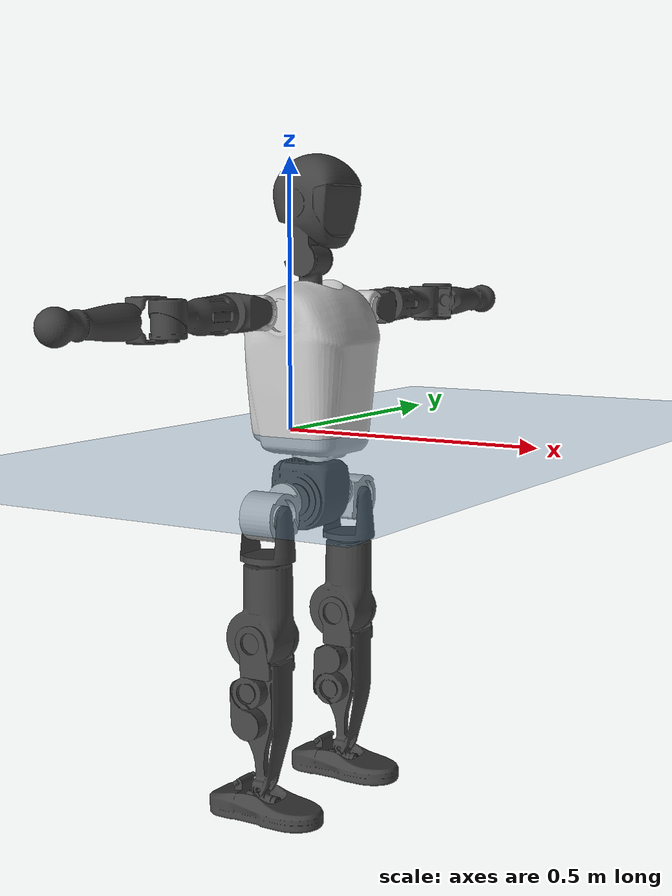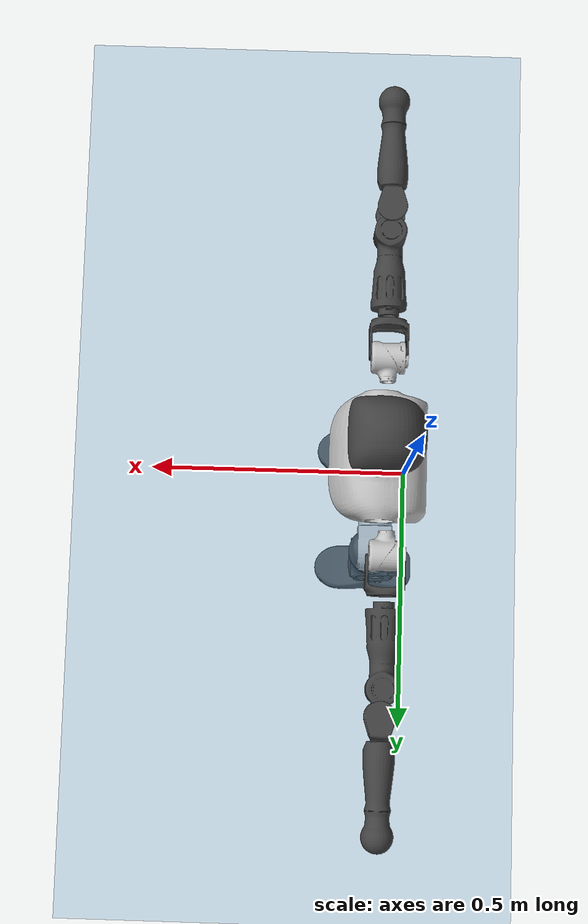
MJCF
<mujoco model="T1">
  <compiler angle="radian" assetdir="assets" balanceinertia="true" inertiafromgeom="false"/>

  <option timestep="0.005" density="1.2" viscosity="2e-05"/>

  <size nkey="1"/>

  <visual>
    <quality shadowsize="8192"/>
    <map shadowclip="0.5"/>
  </visual>

  <default>
    <default class="/">
      <joint armature="0.01" damping="0.01" frictionloss="0.1"/>
      <geom contype="0" conaffinity="0" group="1" solref="-1000 -80"/>
      <site size="0.01 0.005 0.005" group="5"/>
      <general forcelimited="true" biastype="affine" gainprm="25" biasprm="0 -25 -0.6"/>
      <default class="t1">
        <geom rgba="0.25 0.25 0.25 1"/>
        <default class="visual">
          <geom type="mesh" group="2"/>
        </default>
        <default class="collision">
          <geom group="3"/>
        </default>
        <default class="foot">
          <geom size="0.1115 0.05 0.015" type="box" condim="6" group="4" priority="1" solimp="0.015 1 0.015"/>
        </default>
        <default class="reward_collision_sphere">
          <geom group="5" rgba="1 0 0 1"/>
        </default>
      </default>
    </default>
  </default>

  <asset>
    <texture type="skybox" colorspace="auto" name="//unnamed_texture_0" builtin="gradient" rgb1="0.95 0.95 0.95" rgb2="0.95 0.95 0.95" width="100" height="600"/>
    <texture type="2d" colorspace="auto" name="texplane" builtin="checker" rgb1="0.345 0.575 0.748" rgb2="0.345 0.575 0.748" markrgb="1 1 1" width="512" height="512"/>
    <material name="MatPlane" class="/" texture="texplane" texuniform="true" texrepeat="2 2" specular="0.9"/>
    <mesh name="Trunk" class="/" file="Trunk.stl"/>
    <mesh name="H1" class="/" file="H1.stl"/>
    <mesh name="H2" class="/" file="H2.stl"/>
    <mesh name="AL1" class="/" file="AL1.stl"/>
    <mesh name="AL2" class="/" file="AL2.stl"/>
    <mesh name="AL3" class="/" file="AL3.stl"/>
    <mesh name="left_hand_link" class="/" file="left_hand_link.stl"/>
    <mesh name="AR1" class="/" file="AR1.stl"/>
    <mesh name="AR2" class="/" file="AR2.stl"/>
    <mesh name="AR3" class="/" file="AR3.stl"/>
    <mesh name="right_hand_link" class="/" file="right_hand_link.stl"/>
    <mesh name="Waist" class="/" file="Waist.stl"/>
    <mesh name="Hip_Pitch_Left" class="/" file="Hip_Pitch_Left.stl"/>
    <mesh name="Hip_Roll_Left" class="/" file="Hip_Roll_Left.stl"/>
    <mesh name="Hip_Yaw_Left" class="/" file="Hip_Yaw_Left.stl"/>
    <mesh name="Shank_Left" class="/" file="Shank_Left.stl"/>
    <mesh name="Ankle_Cross_Left" class="/" file="Ankle_Cross_Left.stl"/>
    <mesh name="left_foot_link" class="/" file="left_foot_link.stl"/>
    <mesh name="Hip_Pitch_Right" class="/" file="Hip_Pitch_Right.stl"/>
    <mesh name="Hip_Roll_Right" class="/" file="Hip_Roll_Right.stl"/>
    <mesh name="Hip_Yaw_Right" class="/" file="Hip_Yaw_Right.stl"/>
    <mesh name="Shank_Right" class="/" file="Shank_Right.stl"/>
    <mesh name="Ankle_Cross_Right" class="/" file="Ankle_Cross_Right.stl"/>
    <mesh name="right_foot_link" class="/" file="right_foot_link.stl"/>
  </asset>

  <worldbody>
    <geom name="floor" class="/" size="100 100 0.125" type="plane" group="0" material="MatPlane"/>
    <light name="toplight_shadow" class="/" pos="0 0 5" dir="0.0990148 0.0990148 -0.990148" type="directional" ambient="0.04 0.04 0.04" diffuse="0.55 0.55 0.55" specular="0.12 0.12 0.12"/>
    <light name="toplight_fill" class="/" pos="0 0 5" dir="0.0990148 0.0990148 -0.990148" type="directional" castshadow="false" ambient="0.04 0.04 0.04" diffuse="0.3 0.3 0.3" specular="0.08 0.08 0.08"/>
    <body name="trunk" childclass="t1" pos="-0.000254557 -0.00201813 -0.00173504" quat="1 -0.000183225 -2.84512e-06 0.000106223">
      <inertial pos="0.0464308 0.000608135 0.110963" quat="0.999937 0.0105611 -0.000521084 0.00388102" mass="13.2153" diaginertia="0.0297626 0.299708 0.0644613"/>
      <joint name="//unnamed_joint_0" type="free" armature="0" damping="0" frictionloss="0"/>
      <geom name="//unnamed_geom_1" class="visual" rgba="0.76 0.76 0.76 1" mesh="Trunk"/>
      <geom name="//unnamed_geom_2" class="collision" size="0.0791931 0.105591 0.158386" pos="0.0482591 0 0.124739" type="box"/>
      <geom name="//unnamed_geom_3" class="reward_collision_sphere" size="0.121429" pos="0.0482591 0 0.103949"/>
      <geom name="//unnamed_geom_4" class="reward_collision_sphere" size="0.0158386" pos="0.0482591 0.112533 0"/>
      <geom name="//unnamed_geom_5" class="reward_collision_sphere" size="0.0158386" pos="0.0482591 -0.112533 0"/>
      <geom name="//unnamed_geom_6" class="reward_collision_sphere" size="0.0158386" pos="0.0482591 0.141659 0.187108"/>
      <geom name="//unnamed_geom_7" class="reward_collision_sphere" size="0.0158386" pos="0.0482591 -0.141659 0.187108"/>
      <site name="imu" pos="-0.0140512 -0.0130186 0.00493325" size="0.0105591"/>
      <camera name="track" pos="0 -2.64784 0" quat="0.707107 0.707107 0 0" mode="trackcom"/>
      <camera name="ego_camera" pos="0.0981269 0 0.436585" quat="-0.5 -0.5 0.5 0.5"/>
      <body name="H1" pos="0.0473411 -0.00220206 0.254285" quat="1 -0.000186473 -5.31245e-05 0.000158364">
        <inertial pos="-0.000934334 -0.00135092 0.0597101" quat="0.757662 -0.0135807 0.00389448 0.652494" mass="0.511833" diaginertia="8.08672e-05 0.00089097 0.000180571"/>
        <joint name="AAHead_yaw" pos="0 0 0" axis="0.0096753 -0.00446084 0.999943" range="-1.56786 1.5379" armature="0.0111908" damping="0.0247477" frictionloss="0.104348"/>
        <geom name="//unnamed_geom_8" class="visual" mesh="H1"/>
        <body name="H2" pos="-0.000169263 -0.00213092 0.0617526" quat="1 0.000330865 0.000134178 0.000185198">
          <inertial pos="0.00366005 3.86571e-05 0.100824" quat="0.989481 0.102131 -0.0719612 -0.0729242" mass="0.735593" diaginertia="0.000685468 0.00772201 0.00213853"/>
          <joint name="Head_pitch" pos="0 0 0" axis="-0.000979925 -0.999998 -0.00184998" range="-1.20283 0.344137" armature="0.0102765" damping="0.00958462" frictionloss="0.0906425"/>
          <geom name="//unnamed_geom_9" class="visual" mesh="H2"/>
          <geom name="//unnamed_geom_10" class="collision" size="0.0844727" pos="0.00804319 0 0.114344"/>
          <geom name="//unnamed_geom_11" class="reward_collision_sphere" size="0.0950318" pos="0.0160864 0 0.103949"/>
        </body>
      </body>
      <body name="AL1" pos="0.0443186 0.140136 0.225236" quat="1 -0.000884002 0.00035563 0.000130559">
        <inertial pos="-0.000535172 0.0567977 -0.00260417" quat="0.509633 0.491526 -0.502649 0.496003" mass="0.63425" diaginertia="0.000474234 0.00539769 0.000352902"/>
        <joint name="Left_Shoulder_Pitch" pos="0 0 0" axis="0.00174798 0.999998 -0.000585232" stiffness="0.00101118" range="-3.29463 1.26442" armature="0.0103504" damping="0" frictionloss="0.107164"/>
        <geom name="//unnamed_geom_12" class="visual" rgba="0.76 0.76 0.76 1" mesh="AL1"/>
        <body name="AL2" pos="0.000721346 0.0647245 -0.00283426" quat="0.999999 -0.000735998 0.000535036 -0.000967803">
          <inertial pos="0.00469048 0.0510234 0.00265843" quat="0.48836 0.513398 -0.486587 0.511039" mass="0.191814" diaginertia="0.000132483 0.00138524 0.000215984"/>
          <joint name="Left_Shoulder_Roll" pos="0 0 0" axis="-0.999988 8.55872e-05 -0.00486302" range="-1.57833 1.74066" armature="0.0110778" damping="0.00528526" frictionloss="0.103782"/>
          <geom name="//unnamed_geom_13" class="visual" mesh="AL2"/>
          <body name="AL3" pos="0.00067885 0.0806437 0.00325951" quat="1 -0.000157013 0.000163972 -0.000261191">
            <inertial pos="-0.00141445 0.111965 -0.00300584" quat="0.714112 0.699977 0.00534087 -0.00696993" mass="1.27619" diaginertia="0.00439099 0.0536063 0.000787583"/>
            <joint name="Left_Elbow_Pitch" pos="0 0 0" axis="-0.00382983 -0.999924 -0.0117512" stiffness="0.00633945" range="-2.27827 2.29873" armature="0.0107149" damping="0.0238461" frictionloss="0.107332"/>
            <geom name="//unnamed_geom_14" class="visual" mesh="AL3"/>
            <geom name="//unnamed_geom_15" class="collision" size="0.0316773 0.0791931" pos="0 0.0661959 0" quat="0.707105 0.707108 0 0" type="cylinder"/>
            <geom name="//unnamed_geom_16" class="reward_collision_sphere" size="0.0380127"/>
            <body name="left_hand_link" pos="0.00273546 0.196503 -0.000843036" quat="1 -0.000115503 8.43838e-05 -5.92137e-06">
              <inertial pos="-0.0009823 0.145886 -0.000525861" quat="0.706301 0.707883 -0.00243451 -0.00590058" mass="0.384849" diaginertia="0.00267153 0.0333869 0.000263263"/>
              <joint name="Left_Elbow_Yaw" pos="0 0 0" axis="-0.00440331 -0.000835022 0.99999" stiffness="0.00242255" range="-2.47354 0.0190345" armature="0.0103944" damping="0.0086528" frictionloss="0.11857"/>
              <geom name="//unnamed_geom_17" class="visual" mesh="left_hand_link"/>
              <geom name="//unnamed_geom_18" class="collision" size="0.0316773 0.092392" pos="0 0.172109 0" quat="0.707105 0.707108 0 0" type="cylinder"/>
              <geom name="//unnamed_geom_19" class="reward_collision_sphere" size="0.0527954"/>
              <geom name="//unnamed_geom_20" class="reward_collision_sphere" size="0.0369568" pos="0 0.145631 0"/>
              <geom name="//unnamed_geom_21" class="reward_collision_sphere" size="0.0369568" pos="0 0.284643 0"/>
            </body>
          </body>
        </body>
      </body>
      <body name="AR1" pos="0.048201 -0.14013 0.22681" quat="0.999999 0.00113778 0.000659752 -0.000540187">
        <inertial pos="-0.0036153 -0.0592218 -0.001519" quat="0.508032 0.498727 -0.499166 0.493972" mass="0.658532" diaginertia="0.000474017 0.00558412 0.000377793"/>
        <joint name="Right_Shoulder_Pitch" pos="0 0 0" axis="0.00781251 -0.999969 0.000810127" stiffness="0.00040972" range="-1.2323 3.31053" armature="0.0102325" damping="0" frictionloss="0.099835"/>
        <geom name="//unnamed_geom_22" class="visual" rgba="0.76 0.76 0.76 1" mesh="AR1"/>
        <body name="AR2" pos="-0.000436889 -0.0614685 0.00237824" quat="1 3.80908e-05 -8.51631e-06 7.29802e-05">
          <inertial pos="0.000161844 -0.0507328 0.00037282" quat="0.511537 0.484501 -0.517468 0.485609" mass="0.190426" diaginertia="0.000143094 0.00142829 0.000227249"/>
          <joint name="Right_Shoulder_Roll" pos="0 0 0" axis="-0.999998 -0.00169516 -0.000640575" range="-1.74172 1.57323" armature="0.0105891" damping="0.00506916" frictionloss="0.110938"/>
          <geom name="//unnamed_geom_23" class="visual" mesh="AR2"/>
          <body name="AR3" pos="0.00200608 -0.0777668 -0.00248901" quat="0.999999 0.000501773 -0.00130229 -0.000641455">
            <inertial pos="0.00123818 -0.112093 -0.000611566" quat="0.705416 0.70866 -0.0126822 -0.00537524" mass="1.23898" diaginertia="0.00449694 0.0533264 0.000762455"/>
            <joint name="Right_Elbow_Pitch" pos="0 0 0" axis="-0.00597485 0.999955 0.00741622" stiffness="0.000279801" range="-2.25908 2.29785" armature="0.0104707" damping="0.011223" frictionloss="0.106403"/>
            <geom name="//unnamed_geom_24" class="visual" mesh="AR3"/>
            <geom name="//unnamed_geom_25" class="collision" size="0.0316773 0.0791931" pos="0 -0.0661959 0" quat="0.707105 0.707108 0 0" type="cylinder"/>
            <geom name="//unnamed_geom_26" class="reward_collision_sphere" size="0.0380127"/>
            <body name="right_hand_link" pos="-0.00152655 -0.19265 0.000555642" quat="0.999999 0.000835512 0.000768302 -0.000897827">
              <inertial pos="-0.000342667 -0.142296 0.00274317" quat="0.707839 0.706373 0.000884322 0.000525241" mass="0.392347" diaginertia="0.00285491 0.0344345 0.000261256"/>
              <joint name="Right_Elbow_Yaw" pos="0 0 0" axis="0.00170928 0.00404569 0.99999" range="0.0526728 2.44308" armature="0.0111306" damping="0.0042316" frictionloss="0.112599"/>
              <geom name="//unnamed_geom_27" class="visual" mesh="right_hand_link"/>
              <geom name="//unnamed_geom_28" class="collision" size="0.0316773 0.092392" pos="0 -0.172109 0" quat="0.707105 0.707108 0 0" type="cylinder"/>
              <geom name="//unnamed_geom_29" class="reward_collision_sphere" size="0.0527954"/>
              <geom name="//unnamed_geom_30" class="reward_collision_sphere" size="0.0369568" pos="0 -0.145631 0"/>
              <geom name="//unnamed_geom_31" class="reward_collision_sphere" size="0.0369568" pos="0 -0.284643 0"/>
            </body>
          </body>
        </body>
      </body>
      <body name="Waist" pos="0.0463488 -0.00158911 -0.119916" quat="0.999999 -0.000736476 -0.000737675 -0.000140366">
        <inertial pos="0.00167116 0.000115624 0.00772992" quat="0.984164 0.00323858 -0.177225 0.00172268" mass="2.83639" diaginertia="0.00172883 0.021041 0.00568753"/>
        <joint name="Waist" pos="0 0 0" axis="0.00992075 0.00175922 0.999949" range="-1.62577 1.57834" armature="0.011887" damping="0.0231564" frictionloss="0.104169"/>
        <geom name="//unnamed_geom_32" class="visual" mesh="Waist"/>
        <body name="Hip_Pitch_Left" pos="0.000164057 0.14225 -0.000557087" quat="1 0.000172866 -0.000216867 0.000207765">
          <inertial pos="0.00133272 -0.00738997 -0.0161916" quat="0.974189 0.225522 0.00347854 0.00908019" mass="1.22574" diaginertia="0.00061126 0.00616483 0.00153643"/>
          <joint name="Left_Hip_Pitch" pos="0 0 0" axis="-0.00478327 0.999984 0.00293402" stiffness="0.00882979" range="-1.79473 1.59993" armature="0.0111771" damping="0.0238968" frictionloss="0.115841"/>
          <geom name="//unnamed_geom_33" class="visual" rgba="0.76 0.76 0.76 1" mesh="Hip_Pitch_Left"/>
          <body name="Hip_Roll_Left" pos="0.00102675 -0.00320821 -0.0227573" quat="1 -0.000509709 0.000281487 0.000326096">
            <inertial pos="-0.00185722 -0.000107182 -0.0531364" quat="0.707855 -0.00704265 -0.0107349 0.706242" mass="0.457767" diaginertia="0.000583303 0.00653683 0.000643397"/>
            <joint name="Left_Hip_Roll" pos="0 0 0" axis="-0.999957 0.000416449 -0.00926268" stiffness="0.00754112" range="-1.56707 0.20917" armature="0.0113281" damping="0.00229046" frictionloss="0.0907364"/>
            <geom name="//unnamed_geom_34" class="visual" mesh="Hip_Roll_Left"/>
            <geom name="//unnamed_geom_35" class="reward_collision_sphere" size="0.058075"/>
            <body name="Hip_Yaw_Left" pos="-0.00300968 0.000349143 -0.0851598" quat="1 0.000124517 3.27545e-05 -5.00139e-06">
              <inertial pos="-0.00776833 0.00137844 -0.0930316" quat="0.697514 -0.0312674 -0.0292 0.715293" mass="2.52227" diaginertia="0.00882174 0.101826 0.0032043"/>
              <joint name="Left_Hip_Yaw" pos="0 0 0" axis="-0.002643 0.00257763 -0.999993" range="-1.06478 1.04063" armature="0.0105636" damping="0" frictionloss="0.102763"/>
              <geom name="//unnamed_geom_36" class="visual" mesh="Hip_Yaw_Left"/>
              <geom name="//unnamed_geom_37" class="collision" size="0.0527954 0.0844727" type="cylinder"/>
              <body name="Shank_Left" pos="-0.0105834 -0.000720832 -0.137464" quat="1 4.54746e-05 -0.000339176 2.64777e-05">
                <inertial pos="-0.00519991 0.00252599 -0.127435" quat="0.997551 0.00121618 -0.0242128 0.0656103" mass="2.04878" diaginertia="0.011856 0.143069 0.00230255"/>
                <joint name="Left_Knee_Pitch" pos="0 0 0" axis="0.000750217 0.999993 -0.00374752" stiffness="0.00790159" range="0.051097 2.28833" armature="0.010409" damping="0.01624" frictionloss="0.102387"/>
                <geom name="//unnamed_geom_38" class="visual" mesh="Shank_Left"/>
                <geom name="//unnamed_geom_39" class="collision" size="0.0527954 0.0791931" pos="0 0 -0.124739" type="cylinder"/>
                <geom name="//unnamed_geom_40" class="reward_collision_sphere" size="0.0686341"/>
                <body name="Ankle_Cross_Left" pos="0.00104822 -0.000863884 -0.289248" quat="1 0.000213684 -0.000183212 -0.00012774">
                  <inertial pos="-0.00527433 0.00276137 -0.00553561" quat="0.449181 0.541506 0.557036 0.441269" mass="0.0895214" diaginertia="1.01343e-05 0.00010173 1.38656e-05"/>
                  <joint name="Left_Ankle_Pitch" pos="0 0 0" axis="0.000934724 0.999999 -0.00139496" range="-0.839627 0.350268" armature="0.00926338" damping="0.00070666" frictionloss="0.113221"/>
                  <geom name="//unnamed_geom_41" class="visual" mesh="Ankle_Cross_Left"/>
                  <body name="left_foot_link" pos="-0.00274983 -0.00262396 -0.011599" quat="0.999999 -0.000975306 0.000503463 0.000528441">
                    <inertial pos="-0.0028353 6.14574e-05 -0.0117493" quat="-0.00212711 0.616207 -0.00425268 0.78757" mass="0.77598" diaginertia="0.00086614 0.00978958 0.00259924"/>
                    <joint name="Left_Ankle_Roll" pos="0 0 0" axis="-0.999999 5.41042e-06 0.00165361" range="-0.45672 0.441268" armature="0.010494" damping="0.00203368" frictionloss="0.106348"/>
                    <geom name="//unnamed_geom_42" class="visual" mesh="left_foot_link"/>
                    <geom name="left_foot" class="foot" size="0.11338 0.0473392 0.0148433" pos="0.00804319 0 -0.0155923"/>
                    <geom name="//unnamed_geom_44" class="reward_collision_sphere" size="0.0549072" pos="0.00804319 0 -0.0155923"/>
                    <geom name="//unnamed_geom_45" class="reward_collision_sphere" size="0.0316773" pos="0.0764103 -0.0304501 -0.0155923"/>
                    <geom name="//unnamed_geom_46" class="reward_collision_sphere" size="0.0316773" pos="-0.0563023 -0.0304501 -0.0155923"/>
                    <site name="left_foot" class="foot" pos="0.00804319 0 -0.0155923" size="0.0105591"/>
                  </body>
                </body>
              </body>
            </body>
          </body>
        </body>
        <body name="Hip_Pitch_Right" pos="0.000351791 -0.139034 0.00216037" quat="1 -0.000563 -0.000308461 -0.000329208">
          <inertial pos="-0.00210372 0.00837043 -0.0166394" quat="0.973994 -0.226148 0.0137434 0.00189108" mass="1.24501" diaginertia="0.000629868 0.00607064 0.00156279"/>
          <joint name="Right_Hip_Pitch" pos="0 0 0" axis="3.27636e-05 -1 0.000381139" stiffness="0.00105256" range="-1.5671 1.78466" armature="0.00908404" damping="0.010949" frictionloss="0.107898"/>
          <geom name="//unnamed_geom_47" class="visual" rgba="0.76 0.76 0.76 1" mesh="Hip_Pitch_Right"/>
          <body name="Hip_Roll_Right" pos="0.000676288 -0.000838035 -0.0228792" quat="0.999999 -3.00083e-05 0.000509383 0.00143874">
            <inertial pos="0.0014707 0.00184513 -0.0529209" quat="0.705375 -0.0100852 -0.00461569 0.708748" mass="0.436146" diaginertia="0.000586191 0.00624906 0.000613047"/>
            <joint name="Right_Hip_Roll" pos="0 0 0" axis="-0.999998 0.000813575 -0.00189399" range="-0.193518 1.55147" armature="0.0105513" damping="0.0140565" frictionloss="0.120056"/>
            <geom name="//unnamed_geom_48" class="visual" mesh="Hip_Roll_Right"/>
            <geom name="//unnamed_geom_49" class="reward_collision_sphere" size="0.058075"/>
            <body name="Hip_Yaw_Right" pos="-0.00176209 -0.00124497 -0.0850077" quat="1 0.000214116 -0.000292794 0.000286049">
              <inertial pos="-0.00554221 -0.00293245 -0.0941211" quat="0.708482 -0.0307261 -0.0358619 0.704147" mass="2.60232" diaginertia="0.0086938 0.108174 0.00307995"/>
              <joint name="Right_Hip_Yaw" pos="0 0 0" axis="0.000598261 -0.00167447 -0.999998" range="-1.01162 1.02022" armature="0.0116655" damping="0.00987949" frictionloss="0.106518"/>
              <geom name="//unnamed_geom_50" class="visual" mesh="Hip_Yaw_Right"/>
              <geom name="//unnamed_geom_51" class="collision" size="0.0527954 0.0844727" type="cylinder"/>
              <body name="Shank_Right" pos="-0.0129075 0.000554242 -0.138016" quat="0.999999 0.000193659 0.000819347 0.00110709">
                <inertial pos="-0.00539934 0.000154211 -0.130019" quat="0.9991 -0.00137178 -0.0275489 -0.0322168" mass="2.12228" diaginertia="0.0117358 0.137951 0.00242517"/>
                <joint name="Right_Knee_Pitch" pos="0 0 0" axis="0.00557153 -0.999948 -0.00851776" stiffness="0.00934002" range="-2.30938 0.0328143" armature="0.0110753" damping="0.0193899" frictionloss="0.107116"/>
                <geom name="//unnamed_geom_52" class="visual" mesh="Shank_Right"/>
                <geom name="//unnamed_geom_53" class="collision" size="0.0527954 0.0791931" pos="0 0 -0.124739" type="cylinder"/>
                <geom name="//unnamed_geom_54" class="reward_collision_sphere" size="0.0686341"/>
                <body name="Ankle_Cross_Right" pos="-0.002043 0.000680202 -0.28986" quat="1 -0.000129492 0.000118781 4.40369e-05">
                  <inertial pos="-0.00321448 -0.00256655 -0.00838713" quat="0.436898 0.556658 0.55411 0.438421" mass="0.0905634" diaginertia="1.00288e-05 0.000107695 1.46048e-05"/>
                  <joint name="Right_Ankle_Pitch" pos="0 0 0" axis="0.0114744 -0.99992 -0.00523012" range="-0.392426 0.82978" armature="0.0106615" damping="0.0071351" frictionloss="0.102904"/>
                  <geom name="//unnamed_geom_55" class="visual" mesh="Ankle_Cross_Right"/>
                  <body name="right_foot_link" pos="0.00151006 -0.000984284 -0.0147353" quat="1 -0.000167785 -5.31685e-05 -8.6807e-06">
                    <inertial pos="-0.000963737 -0.000766243 -0.00934546" quat="-0.00142848 0.620454 0.00212312 0.784238" mass="0.800796" diaginertia="0.00089431 0.00930252 0.0025959"/>
                    <joint name="Right_Ankle_Roll" pos="0 0 0" axis="-0.999926 -0.0052467 -0.010979" range="-0.46293 0.440907" armature="0.0100363" damping="0.00304396" frictionloss="0.10308"/>
                    <geom name="//unnamed_geom_56" class="visual" mesh="right_foot_link"/>
                    <geom name="right_foot" class="foot" size="0.10799 0.0452084 0.0145469" pos="0.00804319 0 -0.0155923"/>
                    <geom name="//unnamed_geom_58" class="reward_collision_sphere" size="0.0422363"/>
                    <geom name="//unnamed_geom_59" class="reward_collision_sphere" size="0.0316773" pos="0.00804319 0 -0.0155923"/>
                    <geom name="//unnamed_geom_60" class="reward_collision_sphere" size="0.0316773" pos="0.0764103 0.0304501 -0.0155923"/>
                    <geom name="//unnamed_geom_61" class="reward_collision_sphere" size="0.0316773" pos="-0.0563023 0.0304501 -0.0155923"/>
                    <site name="right_foot" class="foot" pos="0.00804319 0 -0.0155923" size="0.0105591"/>
                  </body>
                </body>
              </body>
            </body>
          </body>
        </body>
      </body>
    </body>
  </worldbody>

  <contact>
    <pair class="/" geom1="floor" geom2="left_foot" name="//unnamed_contact_0"/>
    <pair class="/" geom1="floor" geom2="right_foot" name="//unnamed_contact_1"/>
  </contact>

  <actuator>
    <general name="AAHead_yaw" class="/" joint="AAHead_yaw" forcerange="-7.75191 7.75191" gainprm="24.489" biasprm="0 -24.489 -0.617729"/>
    <general name="Head_pitch" class="/" joint="Head_pitch" forcerange="-7.35137 7.35137" gainprm="24.489" biasprm="0 -24.489 -0.617729"/>
    <general name="Left_Shoulder_Pitch" class="/" joint="Left_Shoulder_Pitch" forcerange="-16.823 16.823" gainprm="24.489" biasprm="0 -24.489 -0.617729"/>
    <general name="Left_Shoulder_Roll" class="/" joint="Left_Shoulder_Roll" forcerange="-17.7194 17.7194" gainprm="24.489" biasprm="0 -24.489 -0.617729"/>
    <general name="Left_Elbow_Pitch" class="/" joint="Left_Elbow_Pitch" forcerange="-19.0715 19.0715" gainprm="24.489" biasprm="0 -24.489 -0.617729"/>
    <general name="Left_Elbow_Yaw" class="/" joint="Left_Elbow_Yaw" forcerange="-17.9974 17.9974" gainprm="24.489" biasprm="0 -24.489 -0.617729"/>
    <general name="Right_Shoulder_Pitch" class="/" joint="Right_Shoulder_Pitch" forcerange="-20.5103 20.5103" gainprm="24.489" biasprm="0 -24.489 -0.617729"/>
    <general name="Right_Shoulder_Roll" class="/" joint="Right_Shoulder_Roll" forcerange="-17.0202 17.0202" gainprm="24.489" biasprm="0 -24.489 -0.617729"/>
    <general name="Right_Elbow_Pitch" class="/" joint="Right_Elbow_Pitch" forcerange="-20.0323 20.0323" gainprm="24.489" biasprm="0 -24.489 -0.617729"/>
    <general name="Right_Elbow_Yaw" class="/" joint="Right_Elbow_Yaw" forcerange="-20.195 20.195" gainprm="24.489" biasprm="0 -24.489 -0.617729"/>
    <general name="Waist" class="/" joint="Waist" forcerange="-34.542 34.542" gainprm="24.489" biasprm="0 -24.489 -0.617729"/>
    <general name="Left_Hip_Pitch" class="/" joint="Left_Hip_Pitch" forcerange="-46.4389 46.4389" gainprm="24.489" biasprm="0 -24.489 -0.617729"/>
    <general name="Left_Hip_Roll" class="/" joint="Left_Hip_Roll" forcerange="-34.7117 34.7117" gainprm="24.489" biasprm="0 -24.489 -0.617729"/>
    <general name="Left_Hip_Yaw" class="/" joint="Left_Hip_Yaw" forcerange="-28.9329 28.9329" gainprm="24.489" biasprm="0 -24.489 -0.617729"/>
    <general name="Left_Knee_Pitch" class="/" joint="Left_Knee_Pitch" forcerange="-61.5755 61.5755" gainprm="24.489" biasprm="0 -24.489 -0.617729"/>
    <general name="Left_Ankle_Pitch" class="/" joint="Left_Ankle_Pitch" forcerange="-20.9032 20.9032" gainprm="24.489" biasprm="0 -24.489 -0.617729"/>
    <general name="Left_Ankle_Roll" class="/" joint="Left_Ankle_Roll" forcerange="-17.0188 17.0188" gainprm="24.489" biasprm="0 -24.489 -0.617729"/>
    <general name="Right_Hip_Pitch" class="/" joint="Right_Hip_Pitch" forcerange="-47.6073 47.6073" gainprm="24.489" biasprm="0 -24.489 -0.617729"/>
    <general name="Right_Hip_Roll" class="/" joint="Right_Hip_Roll" forcerange="-31.6731 31.6731" gainprm="24.489" biasprm="0 -24.489 -0.617729"/>
    <general name="Right_Hip_Yaw" class="/" joint="Right_Hip_Yaw" forcerange="-33.0772 33.0772" gainprm="24.489" biasprm="0 -24.489 -0.617729"/>
    <general name="Right_Knee_Pitch" class="/" joint="Right_Knee_Pitch" forcerange="-63.2044 63.2044" gainprm="24.489" biasprm="0 -24.489 -0.617729"/>
    <general name="Right_Ankle_Pitch" class="/" joint="Right_Ankle_Pitch" forcerange="-20.9982 20.9982" gainprm="24.489" biasprm="0 -24.489 -0.617729"/>
    <general name="Right_Ankle_Roll" class="/" joint="Right_Ankle_Roll" forcerange="-14.1682 14.1682" gainprm="24.489" biasprm="0 -24.489 -0.617729"/>
  </actuator>

  <sensor>
    <gyro site="imu" name="imu_angular_velocity"/>
    <velocimeter site="imu" name="imu_linear_velocity"/>
    <framelinvel objtype="site" objname="left_foot" name="left_foot_global_linear_velocity"/>
    <framelinvel objtype="site" objname="right_foot" name="right_foot_global_linear_velocity"/>
  </sensor>

  <keyframe>
    <key name="home" qpos="0 0 0.6385 1 0 0 0 0 0 0 1.4 0 -0.4 0 -1.4 0 0.4 0 -0.4 0 0 0.8 -0.4 0 0.4 0 0 -0.8 0.4 0"/>
  </keyframe>
</mujoco>
